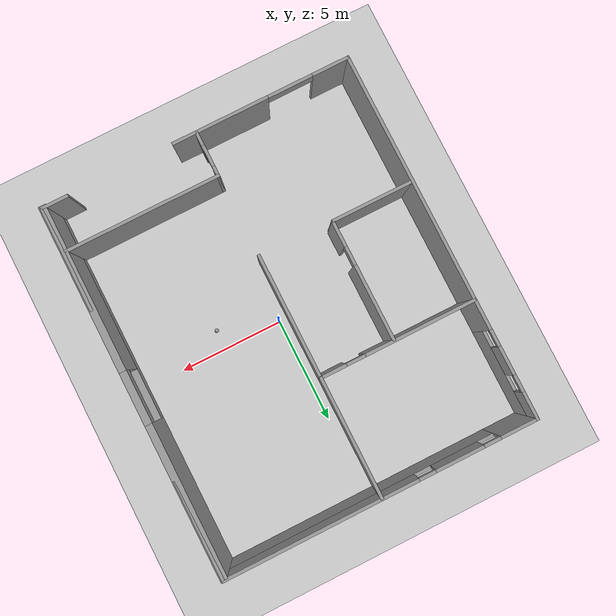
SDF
<sdf version="1.6">
 <world name="default">
  <plugin name="hello" filename="libhello_world.so"/>
  <light name="sun" type="directional">
   <pose>0 0 10 0 -0 0</pose>
   <diffuse>0.8 0.8 0.8 1</diffuse>
   <specular>0.2 0.2 0.2 1</specular>
   <attenuation>
    <range>1000</range>
    <constant>0.9</constant>
    <linear>0.01</linear>
    <quadratic>0.001</quadratic>
   </attenuation>
   <direction>-0.5 0.1 -0.9</direction>
  </light>
  <model name="ground_plane">
   <static>1</static>
   <link name="link">
    <collision name="collision">
     <geometry><plane><normal>0 0 1</normal><size>100 100</size></plane></geometry>
     <surface>
      <contact><collide_bitmask>65535</collide_bitmask></contact>
      <friction><ode><mu>100</mu><mu2>50</mu2></ode></friction>
     </surface>
    </collision>
    <visual name="visual">
     <cast_shadows>0</cast_shadows>
     <geometry><plane><normal>0 0 1</normal><size>100 100</size></plane></geometry>
     <material>
      <script><uri>file://media/materials/scripts/gazebo.material</uri><name>Gazebo/Grey</name></script>
     </material>
    </visual>
   </link>
  </model>
  <gravity>0 0 -9.8</gravity>
  <magnetic_field>6e-06 2.3e-05 -4.2e-05</magnetic_field>
  <atmosphere type="adiabatic"/>
  <physics name="default_physics" default="0" type="ode">
   <max_step_size>0.001</max_step_size>
   <real_time_factor>1</real_time_factor>
   <real_time_update_rate>1000</real_time_update_rate>
  </physics>
  <scene><ambient>0.4 0.4 0.4 1</ambient><background>0.7 0.7 0.7 1</background><shadows>1</shadows></scene>
  <spherical_coordinates>
   <surface_model>EARTH_WGS84</surface_model>
   <latitude_deg>0</latitude_deg>
   <longitude_deg>0</longitude_deg>
   <elevation>0</elevation>
   <heading_deg>0</heading_deg>
  </spherical_coordinates>
  <model name="robo_world">
   <pose>-0.434355 -0.09834 0 0 -0 0</pose>
   <link name="Wall_13">
    <collision name="Wall_13_Collision">
     <geometry><box><size>5.75 0.15 2.5</size></box></geometry>
     <pose>0 0 1.25 0 -0 0</pose>
    </collision>
    <visual name="Wall_13_Visual">
     <pose>0 0 1.25 0 -0 0</pose>
     <geometry><box><size>5.75 0.15 2.5</size></box></geometry>
     <material>
      <script><uri>file://media/materials/scripts/gazebo.material</uri><name>Gazebo/Grey</name></script>
      <ambient>1 1 1 1</ambient>
     </material>
     <meta><layer>0</layer></meta>
    </visual>
    <pose>-0.030448 5.95573 0 0 -0 1.5708</pose>
   </link>
   <link name="Wall_21">
    <collision name="Wall_21_Collision">
     <geometry><box><size>3.87964 0.15 2.5</size></box></geometry>
     <pose>0 0 1.25 0 -0 0</pose>
    </collision>
    <visual name="Wall_21_Visual">
     <pose>0 0 1.25 0 -0 0</pose>
     <geometry><box><size>3.87964 0.15 2.5</size></box></geometry>
     <material>
      <script><uri>file://media/materials/scripts/gazebo.material</uri><name>Gazebo/Grey</name></script>
      <ambient>1 1 1 1</ambient>
     </material>
     <meta><layer>0</layer></meta>
    </visual>
    <pose>-5.45285 -2.64069 0 0 -0 0</pose>
   </link>
   <link name="Wall_22">
    <pose>-3.53556 0.264251 0 0 -0 1.5708</pose>
    <visual name="Wall_22_Visual_0">
     <pose>-2.27545 0 1.25 0 -0 0</pose>
     <geometry><box><size>1.19911 0.15 2.5</size></box></geometry>
     <material>
      <script><uri>file://media/materials/scripts/gazebo.material</uri><name>Gazebo/Grey</name></script>
      <ambient>1 1 1 1</ambient>
     </material>
     <meta><layer>0</layer></meta>
    </visual>
    <collision name="Wall_22_Collision_0">
     <geometry><box><size>1.19911 0.15 2.5</size></box></geometry>
     <pose>-2.27545 0 1.25 0 -0 0</pose>
    </collision>
    <visual name="Wall_22_Visual_1">
     <pose>1.04955 0 1.25 0 -0 0</pose>
     <geometry><box><size>3.65089 0.15 2.5</size></box></geometry>
     <material>
      <script><uri>file://media/materials/scripts/gazebo.material</uri><name>Gazebo/Grey</name></script>
      <ambient>1 1 1 1</ambient>
     </material>
     <meta><layer>0</layer></meta>
    </visual>
    <collision name="Wall_22_Collision_1">
     <geometry><box><size>3.65089 0.15 2.5</size></box></geometry>
     <pose>1.04955 0 1.25 0 -0 0</pose>
    </collision>
    <visual name="Wall_22_Visual_2">
     <pose>-1.22589 0 2.25 0 -0 0</pose>
     <geometry><box><size>0.9 0.15 0.5</size></box></geometry>
     <material>
      <script><uri>file://media/materials/scripts/gazebo.material</uri><name>Gazebo/Grey</name></script>
      <ambient>1 1 1 1</ambient>
     </material>
     <meta><layer>0</layer></meta>
    </visual>
    <collision name="Wall_22_Collision_2">
     <geometry><box><size>0.9 0.15 0.5</size></box></geometry>
     <pose>-1.22589 0 2.25 0 -0 0</pose>
    </collision>
   </link>
   <link name="Wall_24">
    <pose>-3.70127 3.13103 0 0 -0 0</pose>
    <visual name="Wall_24_Visual_0">
     <pose>-1.10411 0 1.25 0 -0 0</pose>
     <geometry><box><size>5.29178 0.15 2.5</size></box></geometry>
     <material>
      <script><uri>file://media/materials/scripts/gazebo.material</uri><name>Gazebo/Grey</name></script>
      <ambient>1 1 1 1</ambient>
     </material>
     <meta><layer>0</layer></meta>
    </visual>
    <collision name="Wall_24_Collision_0">
     <geometry><box><size>5.29178 0.15 2.5</size></box></geometry>
     <pose>-1.10411 0 1.25 0 -0 0</pose>
    </collision>
    <visual name="Wall_24_Visual_1">
     <pose>3.09589 0 1.25 0 -0 0</pose>
     <geometry><box><size>1.30822 0.15 2.5</size></box></geometry>
     <material>
      <script><uri>file://media/materials/scripts/gazebo.material</uri><name>Gazebo/Grey</name></script>
      <ambient>1 1 1 1</ambient>
     </material>
     <meta><layer>0</layer></meta>
    </visual>
    <collision name="Wall_24_Collision_1">
     <geometry><box><size>1.30822 0.15 2.5</size></box></geometry>
     <pose>3.09589 0 1.25 0 -0 0</pose>
    </collision>
    <visual name="Wall_24_Visual_2">
     <pose>1.99178 0 2.25 0 -0 0</pose>
     <geometry><box><size>0.9 0.15 0.5</size></box></geometry>
     <material>
      <script><uri>file://media/materials/scripts/gazebo.material</uri><name>Gazebo/Grey</name></script>
      <ambient>1 1 1 1</ambient>
     </material>
     <meta><layer>0</layer></meta>
    </visual>
    <collision name="Wall_24_Collision_2">
     <geometry><box><size>0.9 0.15 0.5</size></box></geometry>
     <pose>1.99178 0 2.25 0 -0 0</pose>
    </collision>
   </link>
   <link name="Wall_26">
    <collision name="Wall_26_Collision">
     <geometry><box><size>6 0.15 2.5</size></box></geometry>
     <pose>0 0 1.25 0 -0 0</pose>
    </collision>
    <visual name="Wall_26_Visual">
     <pose>0 0 1.25 0 -0 0</pose>
     <geometry><box><size>6 0.15 2.5</size></box></geometry>
     <material>
      <script><uri>file://media/materials/scripts/gazebo.material</uri><name>Gazebo/Grey</name></script>
      <ambient>1 1 1 1</ambient>
     </material>
     <meta><layer>0</layer></meta>
    </visual>
    <pose>-0.026274 0.206031 0 0 -0 -1.5708</pose>
   </link>
   <link name="Wall_3">
    <pose>0 8.8 0 0 -0 0</pose>
    <visual name="Wall_3_Visual_0">
     <pose>-6.58873 0 1.25 0 -0 0</pose>
     <geometry><box><size>1.82253 0.15 2.5</size></box></geometry>
     <material>
      <script><uri>file://media/materials/scripts/gazebo.material</uri><name>Gazebo/Grey</name></script>
      <ambient>1 1 1 1</ambient>
     </material>
     <meta><layer>0</layer></meta>
    </visual>
    <collision name="Wall_3_Collision_0">
     <geometry><box><size>1.82253 0.15 2.5</size></box></geometry>
     <pose>-6.58873 0 1.25 0 -0 0</pose>
    </collision>
    <visual name="Wall_3_Visual_1">
     <pose>0.911266 0 0.75 0 -0 0</pose>
     <geometry><box><size>13.1775 0.15 1.5</size></box></geometry>
     <material>
      <script><uri>file://media/materials/scripts/gazebo.material</uri><name>Gazebo/Grey</name></script>
      <ambient>1 1 1 1</ambient>
     </material>
     <meta><layer>0</layer></meta>
    </visual>
    <collision name="Wall_3_Collision_1">
     <geometry><box><size>13.1775 0.15 1.5</size></box></geometry>
     <pose>0.911266 0 0.75 0 -0 0</pose>
    </collision>
    <visual name="Wall_3_Visual_2">
     <pose>-3.7296 0 2 0 -0 0</pose>
     <geometry><box><size>2.29574 0.15 1</size></box></geometry>
     <material>
      <script><uri>file://media/materials/scripts/gazebo.material</uri><name>Gazebo/Grey</name></script>
      <ambient>1 1 1 1</ambient>
     </material>
     <meta><layer>0</layer></meta>
    </visual>
    <collision name="Wall_3_Collision_2">
     <geometry><box><size>2.29574 0.15 1</size></box></geometry>
     <pose>-3.7296 0 2 0 -0 0</pose>
    </collision>
    <visual name="Wall_3_Visual_3">
     <pose>2.85914 0 2 0 -0 0</pose>
     <geometry><box><size>9.28173 0.15 1</size></box></geometry>
     <material>
      <script><uri>file://media/materials/scripts/gazebo.material</uri><name>Gazebo/Grey</name></script>
      <ambient>1 1 1 1</ambient>
     </material>
     <meta><layer>0</layer></meta>
    </visual>
    <collision name="Wall_3_Collision_3">
     <geometry><box><size>9.28173 0.15 1</size></box></geometry>
     <pose>2.85914 0 2 0 -0 0</pose>
    </collision>
    <visual name="Wall_3_Visual_4">
     <pose>-5.27747 0 2.4 0 -0 0</pose>
     <geometry><box><size>0.8 0.15 0.2</size></box></geometry>
     <material>
      <script><uri>file://media/materials/scripts/gazebo.material</uri><name>Gazebo/Grey</name></script>
      <ambient>1 1 1 1</ambient>
     </material>
     <meta><layer>0</layer></meta>
    </visual>
    <collision name="Wall_3_Collision_4">
     <geometry><box><size>0.8 0.15 0.2</size></box></geometry>
     <pose>-5.27747 0 2.4 0 -0 0</pose>
    </collision>
    <visual name="Wall_3_Visual_5">
     <pose>-2.18173 0 2.4 0 -0 0</pose>
     <geometry><box><size>0.8 0.15 0.2</size></box></geometry>
     <material>
      <script><uri>file://media/materials/scripts/gazebo.material</uri><name>Gazebo/Grey</name></script>
      <ambient>1 1 1 1</ambient>
     </material>
     <meta><layer>0</layer></meta>
    </visual>
    <collision name="Wall_3_Collision_5">
     <geometry><box><size>0.8 0.15 0.2</size></box></geometry>
     <pose>-2.18173 0 2.4 0 -0 0</pose>
    </collision>
   </link>
   <link name="Wall_31">
    <pose>-0.019689 -7.69762 0 0 -0 1.5708</pose>
    <visual name="Wall_31_Visual_0">
     <pose>-0.791435 0 1.25 0 -0 0</pose>
     <geometry><box><size>0.667129 0.15 2.5</size></box></geometry>
     <material>
      <script><uri>file://media/materials/scripts/gazebo.material</uri><name>Gazebo/Grey</name></script>
      <ambient>1 1 1 1</ambient>
     </material>
     <meta><layer>0</layer></meta>
    </visual>
    <collision name="Wall_31_Collision_0">
     <geometry><box><size>0.667129 0.15 2.5</size></box></geometry>
     <pose>-0.791435 0 1.25 0 -0 0</pose>
    </collision>
    <visual name="Wall_31_Visual_1">
     <pose>0.851618 0 1.25 0 -0 0</pose>
     <geometry><box><size>0.546765 0.15 2.5</size></box></geometry>
     <material>
      <script><uri>file://media/materials/scripts/gazebo.material</uri><name>Gazebo/Grey</name></script>
      <ambient>1 1 1 1</ambient>
     </material>
     <meta><layer>0</layer></meta>
    </visual>
    <collision name="Wall_31_Collision_1">
     <geometry><box><size>0.546765 0.15 2.5</size></box></geometry>
     <pose>0.851618 0 1.25 0 -0 0</pose>
    </collision>
    <visual name="Wall_31_Visual_2">
     <pose>0.060182 0 2.25 0 -0 0</pose>
     <geometry><box><size>1.03611 0.15 0.5</size></box></geometry>
     <material>
      <script><uri>file://media/materials/scripts/gazebo.material</uri><name>Gazebo/Grey</name></script>
      <ambient>1 1 1 1</ambient>
     </material>
     <meta><layer>0</layer></meta>
    </visual>
    <collision name="Wall_31_Collision_2">
     <geometry><box><size>1.03611 0.15 0.5</size></box></geometry>
     <pose>0.060182 0 2.25 0 -0 0</pose>
    </collision>
   </link>
   <link name="Wall_35">
    <collision name="Wall_35_Collision">
     <geometry><box><size>7.5 0.15 2.5</size></box></geometry>
     <pose>0 0 1.25 0 -0 0</pose>
    </collision>
    <visual name="Wall_35_Visual">
     <pose>0 0 1.25 0 -0 0</pose>
     <geometry><box><size>7.5 0.15 2.5</size></box></geometry>
     <material>
      <script><uri>file://media/materials/scripts/gazebo.material</uri><name>Gazebo/Grey</name></script>
      <ambient>1 1 1 1</ambient>
     </material>
     <meta><layer>0</layer></meta>
    </visual>
    <pose>3.65531 -6.64762 0 0 -0 0</pose>
   </link>
   <link name="Wall_7">
    <pose>7.425 -0 0 0 -0 -1.5708</pose>
    <visual name="Wall_7_Visual_0">
     <pose>-6.53144 0 1.25 0 -0 0</pose>
     <geometry><box><size>4.68712 0.15 2.5</size></box></geometry>
     <material>
      <script><uri>file://media/materials/scripts/gazebo.material</uri><name>Gazebo/Grey</name></script>
      <ambient>1 1 1 1</ambient>
     </material>
     <meta><layer>0</layer></meta>
    </visual>
    <collision name="Wall_7_Collision_0">
     <geometry><box><size>4.68712 0.15 2.5</size></box></geometry>
     <pose>-6.53144 0 1.25 0 -0 0</pose>
    </collision>
    <visual name="Wall_7_Visual_1">
     <pose>6.34356 0 1.25 0 -0 0</pose>
     <geometry><box><size>5.06288 0.15 2.5</size></box></geometry>
     <material>
      <script><uri>file://media/materials/scripts/gazebo.material</uri><name>Gazebo/Grey</name></script>
      <ambient>1 1 1 1</ambient>
     </material>
     <meta><layer>0</layer></meta>
    </visual>
    <collision name="Wall_7_Collision_1">
     <geometry><box><size>5.06288 0.15 2.5</size></box></geometry>
     <pose>6.34356 0 1.25 0 -0 0</pose>
    </collision>
   </link>
   <link name="Wall_8">
    <pose>0 -8.8 0 0 -0 3.14159</pose>
    <visual name="Wall_8_Visual_0">
     <pose>-6.82719 0 1.25 0 -0 0</pose>
     <geometry><box><size>1.34562 0.15 2.5</size></box></geometry>
     <material>
      <script><uri>file://media/materials/scripts/gazebo.material</uri><name>Gazebo/Grey</name></script>
      <ambient>1 1 1 1</ambient>
     </material>
     <meta><layer>0</layer></meta>
    </visual>
    <collision name="Wall_8_Collision_0">
     <geometry><box><size>1.34562 0.15 2.5</size></box></geometry>
     <pose>-6.82719 0 1.25 0 -0 0</pose>
    </collision>
    <visual name="Wall_8_Visual_1">
     <pose>1.17592 0 1.25 0 -0 0</pose>
     <geometry><box><size>4.66059 0.15 2.5</size></box></geometry>
     <material>
      <script><uri>file://media/materials/scripts/gazebo.material</uri><name>Gazebo/Grey</name></script>
      <ambient>1 1 1 1</ambient>
     </material>
     <meta><layer>0</layer></meta>
    </visual>
    <collision name="Wall_8_Collision_1">
     <geometry><box><size>4.66059 0.15 2.5</size></box></geometry>
     <pose>1.17592 0 1.25 0 -0 0</pose>
    </collision>
    <visual name="Wall_8_Visual_2">
     <pose>6.58827 0 1.25 0 -0 0</pose>
     <geometry><box><size>1.82347 0.15 2.5</size></box></geometry>
     <material>
      <script><uri>file://media/materials/scripts/gazebo.material</uri><name>Gazebo/Grey</name></script>
      <ambient>1 1 1 1</ambient>
     </material>
     <meta><layer>0</layer></meta>
    </visual>
    <collision name="Wall_8_Collision_2">
     <geometry><box><size>1.82347 0.15 2.5</size></box></geometry>
     <pose>6.58827 0 1.25 0 -0 0</pose>
    </collision>
    <visual name="Wall_8_Visual_3">
     <pose>4.59137 0 2.25 0 -0 0</pose>
     <geometry><box><size>2.17032 0.15 0.5</size></box></geometry>
     <material>
      <script><uri>file://media/materials/scripts/gazebo.material</uri><name>Gazebo/Grey</name></script>
      <ambient>1 1 1 1</ambient>
     </material>
     <meta><layer>0</layer></meta>
    </visual>
    <collision name="Wall_8_Collision_3">
     <geometry><box><size>2.17032 0.15 0.5</size></box></geometry>
     <pose>4.59137 0 2.25 0 -0 0</pose>
    </collision>
   </link>
   <link name="Wall_9">
    <pose>-7.425 -0 0 0 -0 1.5708</pose>
    <visual name="Wall_9_Visual_0">
     <pose>-2.15376 0 1.25 0 -0 0</pose>
     <geometry><box><size>13.4425 0.15 2.5</size></box></geometry>
     <material>
      <script><uri>file://media/materials/scripts/gazebo.material</uri><name>Gazebo/Grey</name></script>
      <ambient>1 1 1 1</ambient>
     </material>
     <meta><layer>0</layer></meta>
    </visual>
    <collision name="Wall_9_Collision_0">
     <geometry><box><size>13.4425 0.15 2.5</size></box></geometry>
     <pose>-2.15376 0 1.25 0 -0 0</pose>
    </collision>
    <visual name="Wall_9_Visual_1">
     <pose>6.72124 0 0.75 0 -0 0</pose>
     <geometry><box><size>4.30751 0.15 1.5</size></box></geometry>
     <material>
      <script><uri>file://media/materials/scripts/gazebo.material</uri><name>Gazebo/Grey</name></script>
      <ambient>1 1 1 1</ambient>
     </material>
     <meta><layer>0</layer></meta>
    </visual>
    <collision name="Wall_9_Collision_1">
     <geometry><box><size>4.30751 0.15 1.5</size></box></geometry>
     <pose>6.72124 0 0.75 0 -0 0</pose>
    </collision>
    <visual name="Wall_9_Visual_2">
     <pose>6.04313 0 2 0 -0 0</pose>
     <geometry><box><size>1.35128 0.15 1</size></box></geometry>
     <material>
      <script><uri>file://media/materials/scripts/gazebo.material</uri><name>Gazebo/Grey</name></script>
      <ambient>1 1 1 1</ambient>
     </material>
     <meta><layer>0</layer></meta>
    </visual>
    <collision name="Wall_9_Collision_2">
     <geometry><box><size>1.35128 0.15 1</size></box></geometry>
     <pose>6.04313 0 2 0 -0 0</pose>
    </collision>
    <visual name="Wall_9_Visual_3">
     <pose>8.19688 0 2 0 -0 0</pose>
     <geometry><box><size>1.35623 0.15 1</size></box></geometry>
     <material>
      <script><uri>file://media/materials/scripts/gazebo.material</uri><name>Gazebo/Grey</name></script>
      <ambient>1 1 1 1</ambient>
     </material>
     <meta><layer>0</layer></meta>
    </visual>
    <collision name="Wall_9_Collision_3">
     <geometry><box><size>1.35623 0.15 1</size></box></geometry>
     <pose>8.19688 0 2 0 -0 0</pose>
    </collision>
    <visual name="Wall_9_Visual_4">
     <pose>4.96749 0 2.4 0 -0 0</pose>
     <geometry><box><size>0.8 0.15 0.2</size></box></geometry>
     <material>
      <script><uri>file://media/materials/scripts/gazebo.material</uri><name>Gazebo/Grey</name></script>
      <ambient>1 1 1 1</ambient>
     </material>
     <meta><layer>0</layer></meta>
    </visual>
    <collision name="Wall_9_Collision_4">
     <geometry><box><size>0.8 0.15 0.2</size></box></geometry>
     <pose>4.96749 0 2.4 0 -0 0</pose>
    </collision>
    <visual name="Wall_9_Visual_5">
     <pose>7.11877 0 2.4 0 -0 0</pose>
     <geometry><box><size>0.8 0.15 0.2</size></box></geometry>
     <material>
      <script><uri>file://media/materials/scripts/gazebo.material</uri><name>Gazebo/Grey</name></script>
      <ambient>1 1 1 1</ambient>
     </material>
     <meta><layer>0</layer></meta>
    </visual>
    <collision name="Wall_9_Collision_5">
     <geometry><box><size>0.8 0.15 0.2</size></box></geometry>
     <pose>7.11877 0 2.4 0 -0 0</pose>
    </collision>
   </link>
   <static>1</static>
  </model>
  <model name="robo_world_1">
   <pose>3.5565 -0.137 0 0 -0 0</pose>
   <link name="Wall_41">
    <pose>3.3815 0 0 0 -0 -1.5708</pose>
    <visual name="Wall_41_Visual_0">
     <pose>-5.254 0 1.25 0 -0 0</pose>
     <geometry><box><size>7.242 0.35 2.5</size></box></geometry>
     <material>
      <script><uri>file://media/materials/scripts/gazebo.material</uri><name>Gazebo/Grey</name></script>
      <ambient>1 1 1 1</ambient>
     </material>
     <meta><layer>0</layer></meta>
    </visual>
    <collision name="Wall_41_Collision_0">
     <geometry><box><size>7.242 0.35 2.5</size></box></geometry>
     <pose>-5.254 0 1.25 0 -0 0</pose>
    </collision>
    <visual name="Wall_41_Visual_1">
     <pose>3.621 0 0.25 0 -0 0</pose>
     <geometry><box><size>10.508 0.35 0.5</size></box></geometry>
     <material>
      <script><uri>file://media/materials/scripts/gazebo.material</uri><name>Gazebo/Grey</name></script>
      <ambient>1 1 1 1</ambient>
     </material>
     <meta><layer>0</layer></meta>
    </visual>
    <collision name="Wall_41_Collision_1">
     <geometry><box><size>10.508 0.35 0.5</size></box></geometry>
     <pose>3.621 0 0.25 0 -0 0</pose>
    </collision>
    <visual name="Wall_41_Visual_2">
     <pose>4.871 0 1.5 0 -0 0</pose>
     <geometry><box><size>8.008 0.35 2</size></box></geometry>
     <material>
      <script><uri>file://media/materials/scripts/gazebo.material</uri><name>Gazebo/Grey</name></script>
      <ambient>1 1 1 1</ambient>
     </material>
     <meta><layer>0</layer></meta>
    </visual>
    <collision name="Wall_41_Collision_2">
     <geometry><box><size>8.008 0.35 2</size></box></geometry>
     <pose>4.871 0 1.5 0 -0 0</pose>
    </collision>
    <visual name="Wall_41_Visual_3">
     <pose>-0.383 0 2.25 0 -0 0</pose>
     <geometry><box><size>2.5 0.35 0.5</size></box></geometry>
     <material>
      <script><uri>file://media/materials/scripts/gazebo.material</uri><name>Gazebo/Grey</name></script>
      <ambient>1 1 1 1</ambient>
     </material>
     <meta><layer>0</layer></meta>
    </visual>
    <collision name="Wall_41_Collision_3">
     <geometry><box><size>2.5 0.35 0.5</size></box></geometry>
     <pose>-0.383 0 2.25 0 -0 0</pose>
    </collision>
   </link>
   <static>1</static>
  </model>
  <model name="my_ball">
   <link name="link">
    <inertial>
     <mass>1</mass>
     <inertia><ixx>0.1</ixx><ixy>0</ixy><ixz>0</ixz><iyy>0.1</iyy><iyz>0</iyz><izz>0.1</izz></inertia>
    </inertial>
    <visual name="visual">
     <geometry><sphere><radius>0.1</radius></sphere></geometry>
     <material>
      <script><name>Gazebo/Grey</name><uri>file://media/materials/scripts/gazebo.material</uri></script>
      <shader type="pixel"><normal_map>__default__</normal_map></shader>
      <ambient>1 1 1 1</ambient>
      <diffuse>1 1 1 1</diffuse>
      <specular>1 1 1 1</specular>
      <emissive>1 1 1 1</emissive>
     </material>
    </visual>
    <collision name="collision">
     <geometry><sphere><radius>0.1</radius></sphere></geometry>
     <surface>
      <friction>
       <ode><mu>1</mu><mu2>1</mu2><fdir1>0 0 0</fdir1><slip1>0</slip1><slip2>0</slip2></ode>
       <torsional>
        <coefficient>1</coefficient>
        <patch_radius>0</patch_radius>
        <surface_radius>0</surface_radius>
        <use_patch_radius>1</use_patch_radius>
        <ode><slip>0</slip></ode>
       </torsional>
      </friction>
      <bounce><restitution_coefficient>0</restitution_coefficient><threshold>1e+06</threshold></bounce>
      <contact>
       <collide_without_contact>0</collide_without_contact>
       <collide_without_contact_bitmask>1</collide_without_contact_bitmask>
       <collide_bitmask>1</collide_bitmask>
       <ode>
        <soft_cfm>0</soft_cfm>
        <soft_erp>0.2</soft_erp>
        <kp>1e+13</kp>
        <kd>1</kd>
        <max_vel>0.01</max_vel>
        <min_depth>0</min_depth>
       </ode>
       <bullet>
        <split_impulse>1</split_impulse>
        <split_impulse_penetration_threshold>-0.01</split_impulse_penetration_threshold>
        <soft_cfm>0</soft_cfm>
        <soft_erp>0.2</soft_erp>
        <kp>1e+13</kp>
        <kd>1</kd>
       </bullet>
      </contact>
     </surface>
    </collision>
   </link>
   <static>0</static>
   <pose>2.78508 -0.955981 0.1 0 -0 0</pose>
  </model>
  <plugin filename="libcollision_map_creator.so" name="collision_map_creator"/>
 </world>
</sdf>
